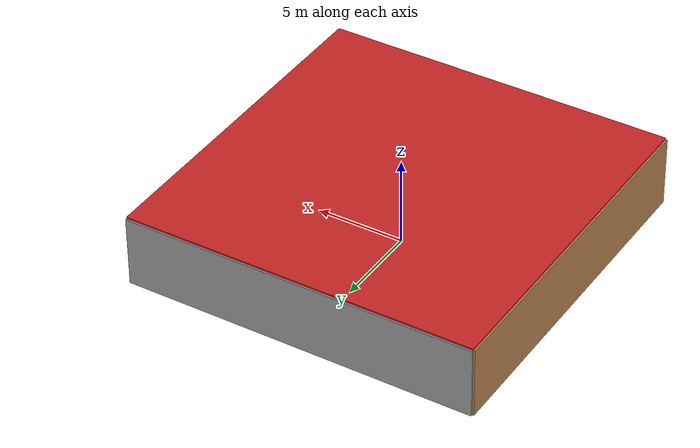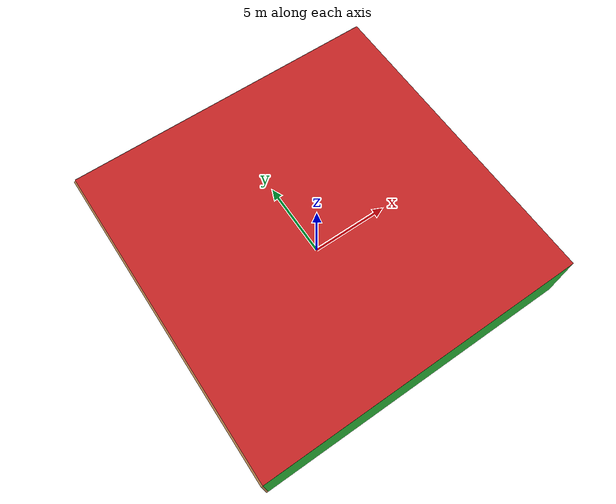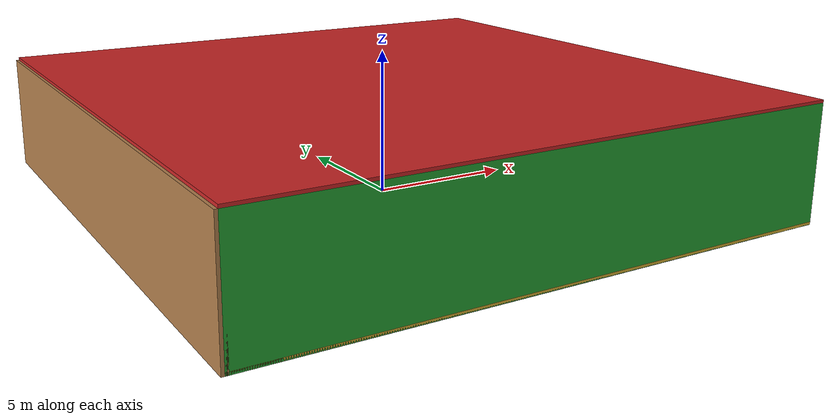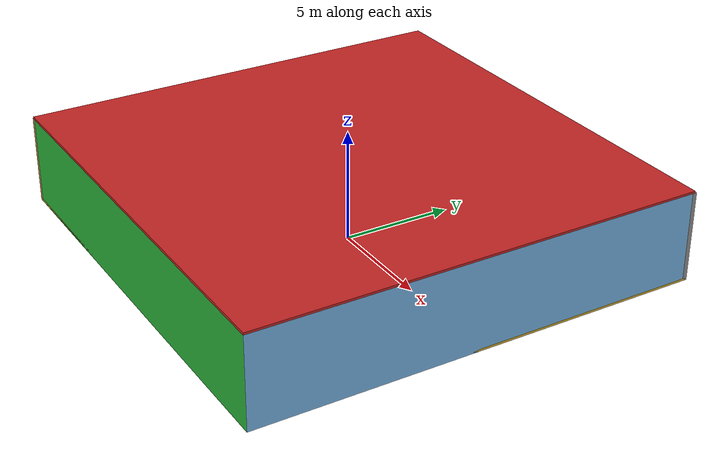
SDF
<sdf version="1.4">
 <world name="default">
  <physics type="ode">
   <max_step_size>0.001</max_step_size>
   <real_time_factor>1</real_time_factor>
   <real_time_update_rate>1000</real_time_update_rate>
   <gravity>0 0 -9.8</gravity>
  </physics>
  <scene><ambient>0.4 0.4 0.4 1</ambient><background>0.7 0.7 0.7 1</background><shadows>1</shadows></scene>
  <model name="Surrounding">
   <static>1</static>
   <link name="Ceiling">
    <collision name="Ceiling_Collision"><geometry><box><size>20 20 0.1</size></box></geometry></collision>
    <visual name="Ceiling_Visual">
     <geometry><box><size>20 20 0.1</size></box></geometry>
     <material>
      <script><uri>file://media/materials/scripts/gazebo.material</uri><name>Gazebo/Red</name></script>
     </material>
    </visual>
    <pose>0 0 4.05 0 0 0</pose>
   </link>
   <link name="Wall_South">
    <collision name="Wall_South_Collision">
     <geometry><box><size>20 0 4</size></box></geometry>
     <pose>0 0 2 0 -0 0</pose>
    </collision>
    <visual name="Wall_South_Visual">
     <pose>0 0 2 0 -0 0</pose>
     <geometry><box><size>20 0 4</size></box></geometry>
     <material>
      <script><uri>file://media/materials/scripts/gazebo.material</uri><name>Gazebo/GreenGlow</name></script>
     </material>
    </visual>
    <velocity_decay><linear>0</linear><angular>0</angular></velocity_decay>
    <pose>0 -10 0 0 -0 0</pose>
   </link>
   <link name="Wall_East">
    <collision name="Wall_21_Collision">
     <geometry><box><size>20 0 4</size></box></geometry>
     <pose>0 0 2 0 -0 0</pose>
    </collision>
    <visual name="Wall_21_Visual">
     <pose>0 0 2 0 -0 0</pose>
     <geometry><box><size>20 0 4</size></box></geometry>
     <material>
      <script><uri>file://media/materials/scripts/gazebo.material</uri><name>Gazebo/SkyBlue</name></script>
     </material>
    </visual>
    <velocity_decay><linear>0</linear><angular>0</angular></velocity_decay>
    <pose>10 0 0 0 -0 1.5708</pose>
   </link>
   <link name="Wall_North">
    <collision name="Wall_22_Collision">
     <geometry><box><size>20 0.2 4</size></box></geometry>
     <pose>0 0 2 0 -0 0</pose>
    </collision>
    <visual name="Wall_22_Visual">
     <pose>0 0 2 0 -0 0</pose>
     <geometry><box><size>20 0.2 4</size></box></geometry>
     <material>
      <script><uri>file://media/materials/scripts/gazebo.material</uri><name>Gazebo/Grey</name></script>
     </material>
    </visual>
    <velocity_decay><linear>0</linear><angular>0</angular></velocity_decay>
    <pose>0 10 0 0 -0 0</pose>
   </link>
   <link name="Wall_West">
    <collision name="Wall_23_Collision">
     <geometry><box><size>20 0.2 4</size></box></geometry>
     <pose>0 0 2 0 -0 0</pose>
    </collision>
    <visual name="Wall_23_Visual">
     <pose>0 0 2 0 -0 0</pose>
     <geometry><box><size>20 0.2 4</size></box></geometry>
     <material>
      <script><uri>file://media/materials/scripts/gazebo.material</uri><name>Gazebo/WoodPallet</name></script>
     </material>
    </visual>
    <velocity_decay><linear>0</linear><angular>0</angular></velocity_decay>
    <pose>-10 0 0 0 0 -1.5708</pose>
   </link>
   <link name="Ground_link">
    <collision name="collision">
     <pose>0 0 .05 0 -0 0</pose>
     <geometry><box><size>20 20 0.1</size></box></geometry>
    </collision>
    <visual name="visual">
     <pose>0 0 .05 0 -0 0</pose>
     <geometry><box><size>20 20 0.1</size></box></geometry>
     <material>
      <script><uri>file://media/materials/scripts/gazebo.material</uri><name>Gazebo/Gold</name></script>
     </material>
    </visual>
   </link>
   <static>1</static>
  </model>
  <spherical_coordinates>
   <surface_model>EARTH_WGS84</surface_model>
   <latitude_deg>0</latitude_deg>
   <longitude_deg>0</longitude_deg>
   <elevation>0</elevation>
   <heading_deg>0</heading_deg>
  </spherical_coordinates>
  <light name="lightball_0" type="diffuse">
   <diffuse>0.8 0.8 0.8 1</diffuse>
   <specular>0.2 0.2 0.2 1</specular>
   <attenuation>
    <range>100</range>
    <constant>0.7</constant>
    <linear>0.01</linear>
    <quadratic>0.001</quadratic>
   </attenuation>
   <direction>-0.5 0.1 -0.9</direction>
   <pose>4.14885942123 0.537371088148 1.07559002377 0 0 0</pose>
  </light>
  <light name="lightball_1" type="diffuse">
   <diffuse>0.8 0.8 0.8 1</diffuse>
   <specular>0.2 0.2 0.2 1</specular>
   <attenuation>
    <range>100</range>
    <constant>0.7</constant>
    <linear>0.01</linear>
    <quadratic>0.001</quadratic>
   </attenuation>
   <direction>-0.5 0.1 -0.9</direction>
   <pose>4.65001886475 0.855679433487 2.10106013745 0 0 0</pose>
  </light>
  <light name="lightball_2" type="diffuse">
   <diffuse>0.8 0.8 0.8 1</diffuse>
   <specular>0.2 0.2 0.2 1</specular>
   <attenuation>
    <range>100</range>
    <constant>0.7</constant>
    <linear>0.01</linear>
    <quadratic>0.001</quadratic>
   </attenuation>
   <direction>-0.5 0.1 -0.9</direction>
   <pose>1.07072729483 -2.85008716858 2.85601006818 0 0 0</pose>
  </light>
  <light name="lightball_3" type="diffuse">
   <diffuse>0.8 0.8 0.8 1</diffuse>
   <specular>0.2 0.2 0.2 1</specular>
   <attenuation>
    <range>100</range>
    <constant>0.7</constant>
    <linear>0.01</linear>
    <quadratic>0.001</quadratic>
   </attenuation>
   <direction>-0.5 0.1 -0.9</direction>
   <pose>-3.04323314116 7.0445052995 1.62927239582 0 0 0</pose>
  </light>
  <light name="lightball_4" type="diffuse">
   <diffuse>0.8 0.8 0.8 1</diffuse>
   <specular>0.2 0.2 0.2 1</specular>
   <attenuation>
    <range>100</range>
    <constant>0.7</constant>
    <linear>0.01</linear>
    <quadratic>0.001</quadratic>
   </attenuation>
   <direction>-0.5 0.1 -0.9</direction>
   <pose>-4.26525973914 2.81372294703 0.690297854591 0 0 0</pose>
  </light>
  <light name="lightball_5" type="diffuse">
   <diffuse>0.8 0.8 0.8 1</diffuse>
   <specular>0.2 0.2 0.2 1</specular>
   <attenuation>
    <range>100</range>
    <constant>0.7</constant>
    <linear>0.01</linear>
    <quadratic>0.001</quadratic>
   </attenuation>
   <direction>-0.5 0.1 -0.9</direction>
   <pose>4.58374146076 3.91246991389 3.41715725767 0 0 0</pose>
  </light>
  <light name="lightball_6" type="diffuse">
   <diffuse>0.8 0.8 0.8 1</diffuse>
   <specular>0.2 0.2 0.2 1</specular>
   <attenuation>
    <range>100</range>
    <constant>0.7</constant>
    <linear>0.01</linear>
    <quadratic>0.001</quadratic>
   </attenuation>
   <direction>-0.5 0.1 -0.9</direction>
   <pose>-6.88345989111 -4.7436796958 2.53792339213 0 0 0</pose>
  </light>
  <light name="lightball_7" type="diffuse">
   <diffuse>0.8 0.8 0.8 1</diffuse>
   <specular>0.2 0.2 0.2 1</specular>
   <attenuation>
    <range>100</range>
    <constant>0.7</constant>
    <linear>0.01</linear>
    <quadratic>0.001</quadratic>
   </attenuation>
   <direction>-0.5 0.1 -0.9</direction>
   <pose>5.42507305349 9.29879693449 3.47361404097 0 0 0</pose>
  </light>
  <light name="lightball_8" type="diffuse">
   <diffuse>0.8 0.8 0.8 1</diffuse>
   <specular>0.2 0.2 0.2 1</specular>
   <attenuation>
    <range>100</range>
    <constant>0.7</constant>
    <linear>0.01</linear>
    <quadratic>0.001</quadratic>
   </attenuation>
   <direction>-0.5 0.1 -0.9</direction>
   <pose>7.99893673758 6.80417770242 1.19563488215 0 0 0</pose>
  </light>
  <light name="lightball_9" type="diffuse">
   <diffuse>0.8 0.8 0.8 1</diffuse>
   <specular>0.2 0.2 0.2 1</specular>
   <attenuation>
    <range>100</range>
    <constant>0.7</constant>
    <linear>0.01</linear>
    <quadratic>0.001</quadratic>
   </attenuation>
   <direction>-0.5 0.1 -0.9</direction>
   <pose>-6.64252856311 6.58278162855 2.5399101078 0 0 0</pose>
  </light>
  <light name="lightball_10" type="diffuse">
   <diffuse>0.8 0.8 0.8 1</diffuse>
   <specular>0.2 0.2 0.2 1</specular>
   <attenuation>
    <range>100</range>
    <constant>0.7</constant>
    <linear>0.01</linear>
    <quadratic>0.001</quadratic>
   </attenuation>
   <direction>-0.5 0.1 -0.9</direction>
   <pose>-0.629885430538 -1.7736422358 0.935306945674 0 0 0</pose>
  </light>
  <light name="lightball_11" type="diffuse">
   <diffuse>0.8 0.8 0.8 1</diffuse>
   <specular>0.2 0.2 0.2 1</specular>
   <attenuation>
    <range>100</range>
    <constant>0.7</constant>
    <linear>0.01</linear>
    <quadratic>0.001</quadratic>
   </attenuation>
   <direction>-0.5 0.1 -0.9</direction>
   <pose>-2.40797231853 1.81491600674 1.565137609 0 0 0</pose>
  </light>
  <light name="lightball_12" type="diffuse">
   <diffuse>0.8 0.8 0.8 1</diffuse>
   <specular>0.2 0.2 0.2 1</specular>
   <attenuation>
    <range>100</range>
    <constant>0.7</constant>
    <linear>0.01</linear>
    <quadratic>0.001</quadratic>
   </attenuation>
   <direction>-0.5 0.1 -0.9</direction>
   <pose>1.21718662022 9.70898054034 1.38317609524 0 0 0</pose>
  </light>
  <include>
   <uri>model://textured_shapes</uri>
   <pose>-6.67767408412 3.88176935966 0 0 0 0.55456967879</pose>
  </include>
  <include>
   <uri>model://textured_shapes</uri>
   <pose>-8.41853772715 7.1304581773 0 0 0 0.549093213714</pose>
  </include>
  <include>
   <uri>model://textured_shapes</uri>
   <pose>0.671078767409 2.64385827674 0 0 0 2.74802371298</pose>
  </include>
  <include>
   <uri>model://textured_shapes</uri>
   <pose>8.16861808923 -4.77171241303 0 0 0 3.10914686917</pose>
  </include>
  <include>
   <uri>model://robocup_3Dsim_goal</uri>
   <pose>7.50218258357 2.02366014315 0 0 0 2.66000622628</pose>
  </include>
 </world>
</sdf>

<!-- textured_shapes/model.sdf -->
<sdf version="1.6">
  <model name="textured_shapes">
    <pose>0 0 0.5 0 0 0</pose>
    <link name="box">
      <pose>0 -1.5 0 0 0 0</pose>
      <collision name="collision">
        <geometry>
          <box>
            <size>1 1 1</size>
          </box>
        </geometry>
      </collision>
      <visual name="visual">
        <geometry>
          <box>
            <size>1 1 1</size>
          </box>
        </geometry>
        <material>
          <script>
            <uri>model://../model_source/models/textured_shapes/materials/scripts</uri>
            <uri>model://../model_source/models/textured_shapes/materials/textures</uri>
            <name>TexturedShape/Squares</name>
          </script>
        </material>
      </visual>
    </link>
    <link name="sphere">
      <collision name="collision">
        <geometry>
          <sphere>
            <radius>0.5</radius>
          </sphere>
        </geometry>
      </collision>
      <visual name="visual">
        <geometry>
          <sphere>
            <radius>0.5</radius>
          </sphere>
        </geometry>
        <material>
          <script>
            <uri>model://../model_source/models/textured_shapes/materials/scripts</uri>
            <uri>model://../model_source/models/textured_shapes/materials/textures</uri>
            <name>TexturedShape/Squares</name>
          </script>
        </material>
      </visual>
    </link>
    <link name="cylinder">
      <pose>0 1.5 0 0 0 0</pose>
      <collision name="collision">
        <geometry>
          <cylinder>
            <radius>0.5</radius>
            <length>1</length>
          </cylinder>
        </geometry>
      </collision>
      <visual name="visual">
        <geometry>
          <cylinder>
            <radius>0.5</radius>
            <length>1</length>
          </cylinder>
        </geometry>
        <material>
          <script>
            <uri>model://../model_source/models/textured_shapes/materials/scripts</uri>
            <uri>model://../model_source/models/textured_shapes/materials/textures</uri>
            <name>TexturedShape/Squares</name>
          </script>
        </material>
      </visual>
    </link>
  </model>
</sdf>

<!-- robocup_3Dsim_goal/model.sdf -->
<sdf version="1.5">
  <model name="robocup_3d_goal">
    <static>true</static>
    <link name="left_post">
      <pose>0 1.05 0.45 0 0 0</pose>
      <collision name="collision">
        <geometry>
          <cylinder>
            <radius>0.05</radius>
            <length>0.9</length>
          </cylinder>
        </geometry>
      </collision>
      <visual name="visual">
        <geometry>
          <cylinder>
            <radius>0.05</radius>
            <length>0.9</length>
          </cylinder>
        </geometry>
        <material>
          <script>
            <uri>file://media/materials/scripts/gazebo.material</uri>
            <name>Gazebo/ZincYellow</name>
          </script>
        </material>
      </visual>
    </link>
    <link name="left_support_horiz_lower">
      <pose>0.30 1.05 0.01 0 0 0</pose>
      <collision name="collision">
        <geometry>
          <box>
            <size>0.50 0.02 0.02</size>
          </box>
        </geometry>
      </collision>
      <visual name="visual">
        <geometry>
          <box>
            <size>0.50 0.02 0.02</size>
          </box>
        </geometry>
        <material>
          <script>
            <uri>file://media/materials/scripts/gazebo.material</uri>
            <name>Gazebo/White</name>
          </script>
        </material>
      </visual>
    </link>
    <link name="left_support_horiz_upper">
      <pose>0.30 1.05 0.79 0 0 0</pose>
      <collision name="collision">
        <geometry>
          <box>
            <size>0.50 0.02 0.02</size>
          </box>
        </geometry>
      </collision>
      <visual name="visual">
        <geometry>
          <box>
            <size>0.50 0.02 0.02</size>
          </box>
        </geometry>
        <material>
          <script>
            <uri>file://media/materials/scripts/gazebo.material</uri>
            <name>Gazebo/White</name>
          </script>
        </material>
      </visual>
    </link>
    <link name="left_support_vertical">
      <pose>0.56 1.05 0.4 0 1.5708 0</pose>
      <collision name="collision">
        <geometry>
          <box>
            <size>0.80 0.02 0.02</size>
          </box>
        </geometry>
      </collision>
      <visual name="visual">
        <geometry>
          <box>
            <size>0.80 0.02 0.02</size>
          </box>
        </geometry>
        <material>
          <script>
            <uri>file://media/materials/scripts/gazebo.material</uri>
            <name>Gazebo/White</name>
          </script>
        </material>
      </visual>
    </link>
    <link name="right_support_horiz_lower">
      <pose>0.30 -1.05 0.01 0 0 0</pose>
      <collision name="collision">
        <geometry>
          <box>
            <size>0.50 0.02 0.02</size>
          </box>
        </geometry>
      </collision>
      <visual name="visual">
        <geometry>
          <box>
            <size>0.50 0.02 0.02</size>
          </box>
        </geometry>
        <material>
          <script>
            <uri>file://media/materials/scripts/gazebo.material</uri>
            <name>Gazebo/White</name>
          </script>
        </material>
      </visual>
    </link>
    <link name="right_support_horiz_upper">
      <pose>0.30 -1.05 0.79 0 0 0</pose>
      <collision name="collision">
        <geometry>
          <box>
            <size>0.50 0.02 0.02</size>
          </box>
        </geometry>
      </collision>
      <visual name="visual">
        <geometry>
          <box>
            <size>0.50 0.02 0.02</size>
          </box>
        </geometry>
        <material>
          <script>
            <uri>file://media/materials/scripts/gazebo.material</uri>
            <name>Gazebo/White</name>
          </script>
        </material>
      </visual>
    </link>
    <link name="right_support_vertical">
      <pose>0.56 -1.05 0.4 0 1.5708 0</pose>
      <collision name="collision">
        <geometry>
          <box>
            <size>0.80 0.02 0.02</size>
          </box>
        </geometry>
      </collision>
      <visual name="visual">
        <geometry>
          <box>
            <size>0.80 0.02 0.02</size>
          </box>
        </geometry>
        <material>
          <script>
            <uri>file://media/materials/scripts/gazebo.material</uri>
            <name>Gazebo/White</name>
          </script>
        </material>
      </visual>
    </link>
    <link name="center_support_horiz_lower">
      <pose>0.56 0 0.01 0 1.5708 0</pose>
      <collision name="collision">
        <geometry>
          <box>
            <size>0.02 2.08 0.02</size>
          </box>
        </geometry>
      </collision>
      <visual name="visual">
        <geometry>
          <box>
            <size>0.02 2.08 0.02</size>
          </box>
        </geometry>
        <material>
          <script>
            <uri>file://media/materials/scripts/gazebo.material</uri>
            <name>Gazebo/White</name>
          </script>
        </material>
      </visual>
    </link>
    <link name="center_support_horiz_upper">
      <pose>0.56 0 0.79 0 1.5708 0</pose>
      <collision name="collision">
        <geometry>
          <box>
            <size>0.02 2.08 0.02</size>
          </box>
        </geometry>
      </collision>
      <visual name="visual">
        <geometry>
          <box>
            <size>0.02 2.08 0.02</size>
          </box>
        </geometry>
        <material>
          <script>
            <uri>file://media/materials/scripts/gazebo.material</uri>
            <name>Gazebo/White</name>
          </script>
        </material>
      </visual>
    </link>
    <link name="right_post">
      <pose>0 -1.05 0.45 0 0 0</pose>
      <collision name="collision">
        <geometry>
          <cylinder>
            <radius>0.05</radius>
            <length>0.9</length>
          </cylinder>
        </geometry>
      </collision>
      <visual name="visual">
        <geometry>
          <cylinder>
            <radius>0.05</radius>
            <length>0.9</length>
          </cylinder>
        </geometry>
        <material>
          <script>
            <uri>file://media/materials/scripts/gazebo.material</uri>
            <name>Gazebo/ZincYellow</name>
          </script>
        </material>
      </visual>
    </link>
    <link name="crossbar">
      <pose>0 0 0.85 1.57 1.57 0</pose>
      <collision name="collision">
        <geometry>
          <cylinder>
            <radius>0.05</radius>
            <length>2.0</length>
          </cylinder>
        </geometry>
      </collision>
      <visual name="visual">
        <geometry>
          <cylinder>
            <radius>0.05</radius>
            <length>2.0</length>
          </cylinder>
        </geometry>
        <material>
          <script>
            <uri>file://media/materials/scripts/gazebo.material</uri>
            <name>Gazebo/ZincYellow</name>
          </script>
        </material>
      </visual>
    </link>
    <link name="center_net">
      <pose>0.56 0 0.40 0 0 0</pose>
      <collision name="collision">
        <geometry>
          <box>
            <size>0.01 2.1 0.80</size>
          </box>
        </geometry>
      </collision>
      <visual name="visual">
        <geometry>
          <box>
            <size>0.01 2.1 0.80</size>
          </box>
        </geometry>
        <material>
          <script>
            <uri>model://../model_source/models/robocup09_spl_field/materials/scripts/</uri>
            <uri>model://../model_source/models/robocup09_spl_field/materials/textures/</uri>
            <name>RoboCup/Net</name>
          </script>
        </material>
      </visual>
    </link>
    <link name="left_net">
      <pose>0.30 1.05 0.40 0 0 0</pose>
      <collision name="collision">
        <geometry>
          <box>
            <size>0.50 0.01 0.76</size>
          </box>
        </geometry>
      </collision>
      <visual name="visual">
        <geometry>
          <box>
            <size>0.50 0.01 0.76</size>
          </box>
        </geometry>
        <material>
          <script>
            <uri>model://../model_source/models/robocup09_spl_field/materials/scripts/</uri>
            <uri>model://../model_source/models/robocup09_spl_field/materials/textures/</uri>
            <name>RoboCup/Net</name>
          </script>
        </material>
      </visual>
    </link>
    <link name="right_net">
      <pose>0.30 -1.05 0.40 0 0 0</pose>
      <collision name="collision">
        <geometry>
          <box>
            <size>0.50 0.01 0.76</size>
          </box>
        </geometry>
      </collision>
      <visual name="visual">
        <geometry>
          <box>
            <size>0.50 0.01 0.76</size>
          </box>
        </geometry>
        <material>
          <script>
            <uri>model://../model_source/models/robocup09_spl_field/materials/scripts/</uri>
            <uri>model://../model_source/models/robocup09_spl_field/materials/textures/</uri>
            <name>RoboCup/Net</name>
          </script>
        </material>
      </visual>
    </link>
  </model>
</sdf>
